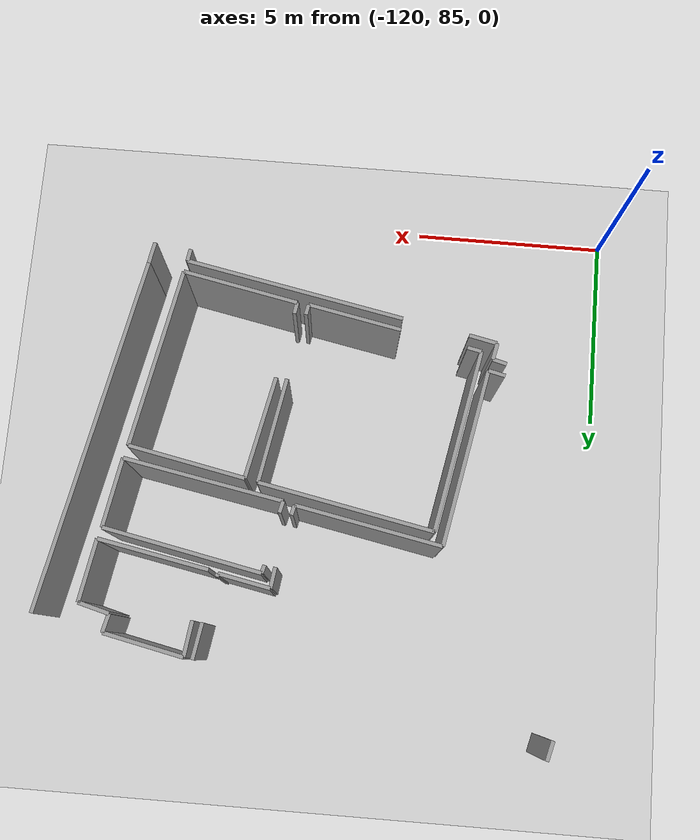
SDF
<sdf version="1.6">
 <world name="default">
  <model name="ground_plane">
   <static>1</static>
   <link name="link">
    <collision name="collision">
     <geometry><plane><normal>0 0 1</normal><size>100 100</size></plane></geometry>
     <surface><friction><ode><mu>100</mu><mu2>50</mu2></ode></friction></surface>
    </collision>
    <visual name="visual">
     <cast_shadows>0</cast_shadows>
     <geometry><plane><normal>0 0 1</normal><size>100 100</size></plane></geometry>
     <material>
      <script><uri>file://media/materials/scripts/gazebo.material</uri><name>Gazebo/Grey</name></script>
     </material>
    </visual>
   </link>
  </model>
  <model name="0510045926_A-40">
   <static>1</static>
   <link name="Wall_293">
    <collision name="Wall_293_Collision">
     <geometry><box><size>2.05216682177 0.1 2.5</size></box></geometry>
     <pose>1.02608341088 0 1.25 0 0 0</pose>
    </collision>
    <visual name="Wall_293_Visual">
     <pose>1.02608341088 0 1.25 0 0 0</pose>
     <geometry><box><size>2.05216682177 0.1 2.5</size></box></geometry>
     <material>
      <script><uri>file://media/materials/scripts/gazebo.material</uri><name>Gazebo/Grey</name></script>
      <ambient>1 1 1 1</ambient>
     </material>
    </visual>
    <pose>24.0031221642 -3.97974400792 0 0 0 -0.207644656957</pose>
   </link>
   <link name="Wall_294">
    <collision name="Wall_294_Collision">
     <geometry><box><size>0.477126872805 0.1 2.5</size></box></geometry>
     <pose>0.238563436402 0 1.25 0 0 0</pose>
    </collision>
    <visual name="Wall_294_Visual">
     <pose>0.238563436402 0 1.25 0 0 0</pose>
     <geometry><box><size>0.477126872805 0.1 2.5</size></box></geometry>
     <material>
      <script><uri>file://media/materials/scripts/gazebo.material</uri><name>Gazebo/Grey</name></script>
      <ambient>1 1 1 1</ambient>
     </material>
    </visual>
    <pose>26.0112067926 -4.40280994777 0 0 0 -1.79887119298</pose>
   </link>
   <link name="Wall_295">
    <collision name="Wall_295_Collision">
     <geometry><box><size>0.807130527565 0.1 2.5</size></box></geometry>
     <pose>0.403565263783 0 1.25 0 0 0</pose>
    </collision>
    <visual name="Wall_295_Visual">
     <pose>0.403565263783 0 1.25 0 0 0</pose>
     <geometry><box><size>0.807130527565 0.1 2.5</size></box></geometry>
     <material>
      <script><uri>file://media/materials/scripts/gazebo.material</uri><name>Gazebo/Grey</name></script>
      <ambient>1 1 1 1</ambient>
     </material>
    </visual>
    <pose>25.9033271355 -4.86758089388 0 0 0 -0.25985284263</pose>
   </link>
   <link name="Wall_296">
    <collision name="Wall_296_Collision">
     <geometry><box><size>1.59654194515 0.1 2.5</size></box></geometry>
     <pose>0.798270972573 0 1.25 0 0 0</pose>
    </collision>
    <visual name="Wall_296_Visual">
     <pose>0.798270972573 0 1.25 0 0 0</pose>
     <geometry><box><size>1.59654194515 0.1 2.5</size></box></geometry>
     <material>
      <script><uri>file://media/materials/scripts/gazebo.material</uri><name>Gazebo/Grey</name></script>
      <ambient>1 1 1 1</ambient>
     </material>
    </visual>
    <pose>26.6833605148 -5.07496366994 0 0 0 -1.74545931575</pose>
   </link>
   <link name="Wall_297">
    <collision name="Wall_297_Collision">
     <geometry><box><size>2.83740772335 0.1 2.5</size></box></geometry>
     <pose>1.41870386168 0 1.25 0 0 0</pose>
    </collision>
    <visual name="Wall_297_Visual">
     <pose>1.41870386168 0 1.25 0 0 0</pose>
     <geometry><box><size>2.83740772335 0.1 2.5</size></box></geometry>
     <material>
      <script><uri>file://media/materials/scripts/gazebo.material</uri><name>Gazebo/Grey</name></script>
      <ambient>1 1 1 1</ambient>
     </material>
    </visual>
    <pose>26.4059194202 -6.6472144838 0 0 0 2.95205713259</pose>
   </link>
   <link name="Wall_298">
    <collision name="Wall_298_Collision">
     <geometry><box><size>0.895186850709 0.1 2.5</size></box></geometry>
     <pose>0.447593425354 0 1.25 0 0 0</pose>
    </collision>
    <visual name="Wall_298_Visual">
     <pose>0.447593425354 0 1.25 0 0 0</pose>
     <geometry><box><size>0.895186850709 0.1 2.5</size></box></geometry>
     <material>
      <script><uri>file://media/materials/scripts/gazebo.material</uri><name>Gazebo/Grey</name></script>
      <ambient>1 1 1 1</ambient>
     </material>
    </visual>
    <pose>23.8810277758 -4.86656555593 0 0 0 1.43398005247</pose>
   </link>
   <link name="Wall_299">
    <collision name="Wall_299_Collision">
     <geometry><box><size>4.07681837762 0.1 2.5</size></box></geometry>
     <pose>2.03840918881 0 1.25 0 0 0</pose>
    </collision>
    <visual name="Wall_299_Visual">
     <pose>2.03840918881 0 1.25 0 0 0</pose>
     <geometry><box><size>4.07681837762 0.1 2.5</size></box></geometry>
     <material>
      <script><uri>file://media/materials/scripts/gazebo.material</uri><name>Gazebo/Grey</name></script>
      <ambient>1 1 1 1</ambient>
     </material>
    </visual>
    <pose>22.3252762037 -6.13319964717 0 0 0 -0.197725250295</pose>
   </link>
   <link name="Wall_300">
    <collision name="Wall_300_Collision">
     <geometry><box><size>1.78433360383 0.1 2.5</size></box></geometry>
     <pose>0.892166801915 0 1.25 0 0 0</pose>
    </collision>
    <visual name="Wall_300_Visual">
     <pose>0.892166801915 0 1.25 0 0 0</pose>
     <geometry><box><size>1.78433360383 0.1 2.5</size></box></geometry>
     <material>
      <script><uri>file://media/materials/scripts/gazebo.material</uri><name>Gazebo/Grey</name></script>
      <ambient>1 1 1 1</ambient>
     </material>
    </visual>
    <pose>26.3226617084 -6.93404745436 0 0 0 -1.74754519487</pose>
   </link>
   <link name="Wall_301">
    <collision name="Wall_301_Collision">
     <geometry><box><size>4.11772349519 0.1 2.5</size></box></geometry>
     <pose>2.0588617476 0 1.25 0 0 0</pose>
    </collision>
    <visual name="Wall_301_Visual">
     <pose>2.0588617476 0 1.25 0 0 0</pose>
     <geometry><box><size>4.11772349519 0.1 2.5</size></box></geometry>
     <material>
      <script><uri>file://media/materials/scripts/gazebo.material</uri><name>Gazebo/Grey</name></script>
      <ambient>1 1 1 1</ambient>
     </material>
    </visual>
    <pose>26.0089222822 -8.69058210594 0 0 0 2.95784651382</pose>
   </link>
   <link name="Wall_302">
    <collision name="Wall_302_Collision">
     <geometry><box><size>0.303091770725 0.1 2.5</size></box></geometry>
     <pose>0.151545885362 0 1.25 0 0 0</pose>
    </collision>
    <visual name="Wall_302_Visual">
     <pose>0.151545885362 0 1.25 0 0 0</pose>
     <geometry><box><size>0.303091770725 0.1 2.5</size></box></geometry>
     <material>
      <script><uri>file://media/materials/scripts/gazebo.material</uri><name>Gazebo/Grey</name></script>
      <ambient>1 1 1 1</ambient>
     </material>
    </visual>
    <pose>21.9605160455 -7.93821668581 0 0 0 1.33495817692</pose>
   </link>
   <link name="Wall_303">
    <collision name="Wall_303_Collision">
     <geometry><box><size>0.207285817826 0.1 2.5</size></box></geometry>
     <pose>0.103642908913 0 1.25 0 0 0</pose>
    </collision>
    <visual name="Wall_303_Visual">
     <pose>0.103642908913 0 1.25 0 0 0</pose>
     <geometry><box><size>0.207285817826 0.1 2.5</size></box></geometry>
     <material>
      <script><uri>file://media/materials/scripts/gazebo.material</uri><name>Gazebo/Grey</name></script>
      <ambient>1 1 1 1</ambient>
     </material>
    </visual>
    <pose>22.2747631407 -6.33423656105 0 0 0 1.32462966304</pose>
   </link>
   <link name="Wall_304">
    <collision name="Wall_304_Collision">
     <geometry><box><size>3.76320264235 0.1 2.5</size></box></geometry>
     <pose>1.88160132117 0 1.25 0 0 0</pose>
    </collision>
    <visual name="Wall_304_Visual">
     <pose>1.88160132117 0 1.25 0 0 0</pose>
     <geometry><box><size>3.76320264235 0.1 2.5</size></box></geometry>
     <material>
      <script><uri>file://media/materials/scripts/gazebo.material</uri><name>Gazebo/Grey</name></script>
      <ambient>1 1 1 1</ambient>
     </material>
    </visual>
    <pose>21.673683075 -7.86130483618 0 0 0 2.94959429508</pose>
   </link>
   <link name="Wall_305">
    <collision name="Wall_305_Collision">
     <geometry><box><size>4.5985766603 0.1 2.5</size></box></geometry>
     <pose>2.29928833015 0 1.25 0 0 0</pose>
    </collision>
    <visual name="Wall_305_Visual">
     <pose>2.29928833015 0 1.25 0 0 0</pose>
     <geometry><box><size>4.5985766603 0.1 2.5</size></box></geometry>
     <material>
      <script><uri>file://media/materials/scripts/gazebo.material</uri><name>Gazebo/Grey</name></script>
      <ambient>1 1 1 1</ambient>
     </material>
    </visual>
    <pose>17.9796297824 -7.14320707183 0 0 0 -1.76004033455</pose>
   </link>
   <link name="Wall_306">
    <collision name="Wall_306_Collision">
     <geometry><box><size>0.438317552957 0.1 2.5</size></box></geometry>
     <pose>0.219158776478 0 1.25 0 0 0</pose>
    </collision>
    <visual name="Wall_306_Visual">
     <pose>0.219158776478 0 1.25 0 0 0</pose>
     <geometry><box><size>0.438317552957 0.1 2.5</size></box></geometry>
     <material>
      <script><uri>file://media/materials/scripts/gazebo.material</uri><name>Gazebo/Grey</name></script>
      <ambient>1 1 1 1</ambient>
     </material>
    </visual>
    <pose>17.1145618499 -11.659684103 0 0 0 2.91080042456</pose>
   </link>
   <link name="Wall_310">
    <collision name="Wall_310_Collision">
     <geometry><box><size>0.499194796037 0.1 2.5</size></box></geometry>
     <pose>0.249597398018 0 1.25 0 0 0</pose>
    </collision>
    <visual name="Wall_310_Visual">
     <pose>0.249597398018 0 1.25 0 0 0</pose>
     <geometry><box><size>0.499194796037 0.1 2.5</size></box></geometry>
     <material>
      <script><uri>file://media/materials/scripts/gazebo.material</uri><name>Gazebo/Grey</name></script>
      <ambient>1 1 1 1</ambient>
     </material>
    </visual>
    <pose>15.087947304 -2.75633792985 0 0 0 1.31635838635</pose>
   </link>
   <link name="Wall_311">
    <collision name="Wall_311_Collision">
     <geometry><box><size>0.912737060867 0.1 2.5</size></box></geometry>
     <pose>0.456368530434 0 1.25 0 0 0</pose>
    </collision>
    <visual name="Wall_311_Visual">
     <pose>0.456368530434 0 1.25 0 0 0</pose>
     <geometry><box><size>0.912737060867 0.1 2.5</size></box></geometry>
     <material>
      <script><uri>file://media/materials/scripts/gazebo.material</uri><name>Gazebo/Grey</name></script>
      <ambient>1 1 1 1</ambient>
     </material>
    </visual>
    <pose>23.7873628501 -3.93824206926 0 0 0 -1.73195822931</pose>
   </link>
   <link name="Wall_312">
    <collision name="Wall_312_Collision">
     <geometry><box><size>0.0846898520099 0.1 2.5</size></box></geometry>
     <pose>0.042344926005 0 1.25 0 0 0</pose>
    </collision>
    <visual name="Wall_312_Visual">
     <pose>0.042344926005 0 1.25 0 0 0</pose>
     <geometry><box><size>0.0846898520099 0.1 2.5</size></box></geometry>
     <material>
      <script><uri>file://media/materials/scripts/gazebo.material</uri><name>Gazebo/Grey</name></script>
      <ambient>1 1 1 1</ambient>
     </material>
    </visual>
    <pose>23.4028036019 -5.95805385099 0 0 0 -1.78523902995</pose>
   </link>
   <link name="Wall_313">
    <collision name="Wall_313_Collision">
     <geometry><box><size>1.33104812457 0.1 2.5</size></box></geometry>
     <pose>0.665524062286 0 1.25 0 0 0</pose>
    </collision>
    <visual name="Wall_313_Visual">
     <pose>0.665524062286 0 1.25 0 0 0</pose>
     <geometry><box><size>1.33104812457 0.1 2.5</size></box></geometry>
     <material>
      <script><uri>file://media/materials/scripts/gazebo.material</uri><name>Gazebo/Grey</name></script>
      <ambient>1 1 1 1</ambient>
     </material>
    </visual>
    <pose>23.3847813533 -6.04080389382 0 0 0 2.94621668857</pose>
   </link>
   <link name="Wall_314">
    <collision name="Wall_314_Collision">
     <geometry><box><size>0.52874747303 0.1 2.5</size></box></geometry>
     <pose>0.264373736515 0 1.25 0 0 0</pose>
    </collision>
    <visual name="Wall_314_Visual">
     <pose>0.264373736515 0 1.25 0 0 0</pose>
     <geometry><box><size>0.52874747303 0.1 2.5</size></box></geometry>
     <material>
      <script><uri>file://media/materials/scripts/gazebo.material</uri><name>Gazebo/Grey</name></script>
      <ambient>1 1 1 1</ambient>
     </material>
    </visual>
    <pose>22.079056751 -5.78240038583 0 0 0 -1.70610782924</pose>
   </link>
   <link name="Wall_315">
    <collision name="Wall_315_Collision">
     <geometry><box><size>0.257075317903 0.1 2.5</size></box></geometry>
     <pose>0.128537658952 0 1.25 0 0 0</pose>
    </collision>
    <visual name="Wall_315_Visual">
     <pose>0.128537658952 0 1.25 0 0 0</pose>
     <geometry><box><size>0.257075317903 0.1 2.5</size></box></geometry>
     <material>
      <script><uri>file://media/materials/scripts/gazebo.material</uri><name>Gazebo/Grey</name></script>
      <ambient>1 1 1 1</ambient>
     </material>
    </visual>
    <pose>21.7313035036 -7.61077019729 0 0 0 -1.79685509209</pose>
   </link>
   <link name="Wall_341">
    <collision name="Wall_341_Collision">
     <geometry><box><size>4.50356581608 0.1 2.5</size></box></geometry>
     <pose>2.25178290804 0 1.25 0 0 0</pose>
    </collision>
    <visual name="Wall_341_Visual">
     <pose>2.25178290804 0 1.25 0 0 0</pose>
     <geometry><box><size>4.50356581608 0.1 2.5</size></box></geometry>
     <material>
      <script><uri>file://media/materials/scripts/gazebo.material</uri><name>Gazebo/Grey</name></script>
      <ambient>1 1 1 1</ambient>
     </material>
    </visual>
    <pose>18.2063039795 -7.48715280202 0 0 0 -0.194090499316</pose>
   </link>
   <link name="Wall_342">
    <collision name="Wall_342_Collision">
     <geometry><box><size>2.72001680277 0.1 2.5</size></box></geometry>
     <pose>1.36000840139 0 1.25 0 0 0</pose>
    </collision>
    <visual name="Wall_342_Visual">
     <pose>1.36000840139 0 1.25 0 0 0</pose>
     <geometry><box><size>2.72001680277 0.1 2.5</size></box></geometry>
     <material>
      <script><uri>file://media/materials/scripts/gazebo.material</uri><name>Gazebo/Grey</name></script>
      <ambient>1 1 1 1</ambient>
     </material>
    </visual>
    <pose>22.6253085675 -8.35577441729 0 0 0 -1.74847963676</pose>
   </link>
   <link name="Wall_343">
    <collision name="Wall_343_Collision">
     <geometry><box><size>0.269133992781 0.1 2.5</size></box></geometry>
     <pose>0.13456699639 0 1.25 0 0 0</pose>
    </collision>
    <visual name="Wall_343_Visual">
     <pose>0.13456699639 0 1.25 0 0 0</pose>
     <geometry><box><size>0.269133992781 0.1 2.5</size></box></geometry>
     <material>
      <script><uri>file://media/materials/scripts/gazebo.material</uri><name>Gazebo/Grey</name></script>
      <ambient>1 1 1 1</ambient>
     </material>
    </visual>
    <pose>21.8191302361 -12.7532030739 0 0 0 -1.756723651</pose>
   </link>
   <link name="Wall_344">
    <collision name="Wall_344_Collision">
     <geometry><box><size>2.42997377372 0.1 2.5</size></box></geometry>
     <pose>1.21498688686 0 1.25 0 0 0</pose>
    </collision>
    <visual name="Wall_344_Visual">
     <pose>1.21498688686 0 1.25 0 0 0</pose>
     <geometry><box><size>2.42997377372 0.1 2.5</size></box></geometry>
     <material>
      <script><uri>file://media/materials/scripts/gazebo.material</uri><name>Gazebo/Grey</name></script>
      <ambient>1 1 1 1</ambient>
     </material>
    </visual>
    <pose>21.7693786766 -13.0176986096 0 0 0 2.94733149439</pose>
   </link>
   <link name="Wall_345">
    <collision name="Wall_345_Collision">
     <geometry><box><size>0.366453403937 0.1 2.5</size></box></geometry>
     <pose>0.183226701969 0 1.25 0 0 0</pose>
    </collision>
    <visual name="Wall_345_Visual">
     <pose>0.183226701969 0 1.25 0 0 0</pose>
     <geometry><box><size>0.366453403937 0.1 2.5</size></box></geometry>
     <material>
      <script><uri>file://media/materials/scripts/gazebo.material</uri><name>Gazebo/Grey</name></script>
      <ambient>1 1 1 1</ambient>
     </material>
    </visual>
    <pose>17.6773129081 -12.2181199749 0 0 0 2.9350953209</pose>
   </link>
   <link name="Wall_346">
    <collision name="Wall_346_Collision">
     <geometry><box><size>4.73969534926 0.1 2.5</size></box></geometry>
     <pose>2.36984767463 0 1.25 0 0 0</pose>
    </collision>
    <visual name="Wall_346_Visual">
     <pose>2.36984767463 0 1.25 0 0 0</pose>
     <geometry><box><size>4.73969534926 0.1 2.5</size></box></geometry>
     <material>
      <script><uri>file://media/materials/scripts/gazebo.material</uri><name>Gazebo/Grey</name></script>
      <ambient>1 1 1 1</ambient>
     </material>
    </visual>
    <pose>17.3186447777 -12.1429849667 0 0 0 1.38240196281</pose>
   </link>
   <link name="Wall_347">
    <collision name="Wall_347_Collision">
     <geometry><box><size>3.01702962532 0.1 2.5</size></box></geometry>
     <pose>1.50851481266 0 1.25 0 0 0</pose>
    </collision>
    <visual name="Wall_347_Visual">
     <pose>1.50851481266 0 1.25 0 0 0</pose>
     <geometry><box><size>3.01702962532 0.1 2.5</size></box></geometry>
     <material>
      <script><uri>file://media/materials/scripts/gazebo.material</uri><name>Gazebo/Grey</name></script>
      <ambient>1 1 1 1</ambient>
     </material>
    </visual>
    <pose>22.9601162562 -8.42786341166 0 0 0 -0.19739555985</pose>
   </link>
   <link name="Wall_348">
    <collision name="Wall_348_Collision">
     <geometry><box><size>4.70842147278 0.1 2.5</size></box></geometry>
     <pose>2.35421073639 0 1.25 0 0 0</pose>
    </collision>
    <visual name="Wall_348_Visual">
     <pose>2.35421073639 0 1.25 0 0 0</pose>
     <geometry><box><size>4.70842147278 0.1 2.5</size></box></geometry>
     <material>
      <script><uri>file://media/materials/scripts/gazebo.material</uri><name>Gazebo/Grey</name></script>
      <ambient>1 1 1 1</ambient>
     </material>
    </visual>
    <pose>25.9185572048 -9.01955160138 0 0 0 -1.76232396782</pose>
   </link>
   <link name="Wall_349">
    <collision name="Wall_349_Collision">
     <geometry><box><size>3.01678072054 0.1 2.5</size></box></geometry>
     <pose>1.50839036027 0 1.25 0 0 0</pose>
    </collision>
    <visual name="Wall_349_Visual">
     <pose>1.50839036027 0 1.25 0 0 0</pose>
     <geometry><box><size>3.01678072054 0.1 2.5</size></box></geometry>
     <material>
      <script><uri>file://media/materials/scripts/gazebo.material</uri><name>Gazebo/Grey</name></script>
      <ambient>1 1 1 1</ambient>
     </material>
    </visual>
    <pose>25.0222676304 -13.6418776137 0 0 0 2.94418059236</pose>
   </link>
   <link name="Wall_350">
    <collision name="Wall_350_Collision">
     <geometry><box><size>0.2997934668 0.1 2.5</size></box></geometry>
     <pose>0.1498967334 0 1.25 0 0 0</pose>
    </collision>
    <visual name="Wall_350_Visual">
     <pose>0.1498967334 0 1.25 0 0 0</pose>
     <geometry><box><size>0.2997934668 0.1 2.5</size></box></geometry>
     <material>
      <script><uri>file://media/materials/scripts/gazebo.material</uri><name>Gazebo/Grey</name></script>
      <ambient>1 1 1 1</ambient>
     </material>
    </visual>
    <pose>22.0640805163 -13.050189424 0 0 0 1.41093713234</pose>
   </link>
   <link name="Wall_351">
    <collision name="Wall_351_Collision">
     <geometry><box><size>2.67439114691 0.1 2.5</size></box></geometry>
     <pose>1.33719557346 0 1.25 0 0 0</pose>
    </collision>
    <visual name="Wall_351_Visual">
     <pose>1.33719557346 0 1.25 0 0 0</pose>
     <geometry><box><size>2.67439114691 0.1 2.5</size></box></geometry>
     <material>
      <script><uri>file://media/materials/scripts/gazebo.material</uri><name>Gazebo/Grey</name></script>
      <ambient>1 1 1 1</ambient>
     </material>
    </visual>
    <pose>22.4189411294 -11.0469276508 0 0 0 1.36703474595</pose>
   </link>
   <link name="Wall_353">
    <collision name="Wall_353_Collision">
     <geometry><box><size>0.366510454954 0.1 2.5</size></box></geometry>
     <pose>0.183255227477 0 1.25 0 0 0</pose>
    </collision>
    <visual name="Wall_353_Visual">
     <pose>0.183255227477 0 1.25 0 0 0</pose>
     <geometry><box><size>0.366510454954 0.1 2.5</size></box></geometry>
     <material>
      <script><uri>file://media/materials/scripts/gazebo.material</uri><name>Gazebo/Grey</name></script>
      <ambient>1 1 1 1</ambient>
     </material>
    </visual>
    <pose>16.6680669869 -11.8665592101 0 0 0 -0.255561167445</pose>
   </link>
   <link name="Wall_354">
    <collision name="Wall_354_Collision">
     <geometry><box><size>0.434543958274 0.1 2.5</size></box></geometry>
     <pose>0.217271979137 0 1.25 0 0 0</pose>
    </collision>
    <visual name="Wall_354_Visual">
     <pose>0.217271979137 0 1.25 0 0 0</pose>
     <geometry><box><size>0.434543958274 0.1 2.5</size></box></geometry>
     <material>
      <script><uri>file://media/materials/scripts/gazebo.material</uri><name>Gazebo/Grey</name></script>
      <ambient>1 1 1 1</ambient>
     </material>
    </visual>
    <pose>17.0226737656 -11.9592087979 0 0 0 -1.77311795517</pose>
   </link>
   <link name="Wall_355">
    <collision name="Wall_355_Collision">
     <geometry><box><size>0.730949010554 0.1 2.5</size></box></geometry>
     <pose>0.365474505277 0 1.25 0 0 0</pose>
    </collision>
    <visual name="Wall_355_Visual">
     <pose>0.365474505277 0 1.25 0 0 0</pose>
     <geometry><box><size>0.730949010554 0.1 2.5</size></box></geometry>
     <material>
      <script><uri>file://media/materials/scripts/gazebo.material</uri><name>Gazebo/Grey</name></script>
      <ambient>1 1 1 1</ambient>
     </material>
    </visual>
    <pose>16.935354702 -12.384889233 0 0 0 -0.210608249584</pose>
   </link>
   <link name="Wall_356">
    <collision name="Wall_356_Collision">
     <geometry><box><size>5.71438147132 0.1 2.5</size></box></geometry>
     <pose>2.85719073566 0 1.25 0 0 0</pose>
    </collision>
    <visual name="Wall_356_Visual">
     <pose>2.85719073566 0 1.25 0 0 0</pose>
     <geometry><box><size>5.71438147132 0.1 2.5</size></box></geometry>
     <material>
      <script><uri>file://media/materials/scripts/gazebo.material</uri><name>Gazebo/Grey</name></script>
      <ambient>1 1 1 1</ambient>
     </material>
    </visual>
    <pose>19.3569357101 -12.8433143169 0 0 0 -0.192595485207</pose>
   </link>
   <link name="Wall_357">
    <collision name="Wall_357_Collision">
     <geometry><box><size>0.31941467218 0.1 2.5</size></box></geometry>
     <pose>0.15970733609 0 1.25 0 0 0</pose>
    </collision>
    <visual name="Wall_357_Visual">
     <pose>0.15970733609 0 1.25 0 0 0</pose>
     <geometry><box><size>0.31941467218 0.1 2.5</size></box></geometry>
     <material>
      <script><uri>file://media/materials/scripts/gazebo.material</uri><name>Gazebo/Grey</name></script>
      <ambient>1 1 1 1</ambient>
     </material>
    </visual>
    <pose>24.9656625397 -13.9370871223 0 0 0 -1.72719163489</pose>
   </link>
   <link name="Wall_364">
    <collision name="Wall_364_Collision">
     <geometry><box><size>9.25605704865 0.1 2.5</size></box></geometry>
     <pose>4.62802852432 0 1.25 0 0 0</pose>
    </collision>
    <visual name="Wall_364_Visual">
     <pose>4.62802852432 0 1.25 0 0 0</pose>
     <geometry><box><size>9.25605704865 0.1 2.5</size></box></geometry>
     <material>
      <script><uri>file://media/materials/scripts/gazebo.material</uri><name>Gazebo/Grey</name></script>
      <ambient>1 1 1 1</ambient>
     </material>
    </visual>
    <pose>25.9459713294 -13.8015395062 0 0 0 1.37134091023</pose>
   </link>
   <link name="Wall_497">
    <collision name="Wall_497_Collision">
     <geometry><box><size>0.565369582613 0.1 2.5</size></box></geometry>
     <pose>0.282684791306 0 1.25 0 0 0</pose>
    </collision>
    <visual name="Wall_497_Visual">
     <pose>0.282684791306 0 1.25 0 0 0</pose>
     <geometry><box><size>0.565369582613 0.1 2.5</size></box></geometry>
     <material>
      <script><uri>file://media/materials/scripts/gazebo.material</uri><name>Gazebo/Grey</name></script>
      <ambient>1 1 1 1</ambient>
     </material>
    </visual>
    <pose>25.8429145276 -14.3574370332 0 0 0 1.38748930286</pose>
   </link>
   <pose>-133.95 101.113233661 0 0 0 0</pose>
  </model>
 </world>
</sdf>
